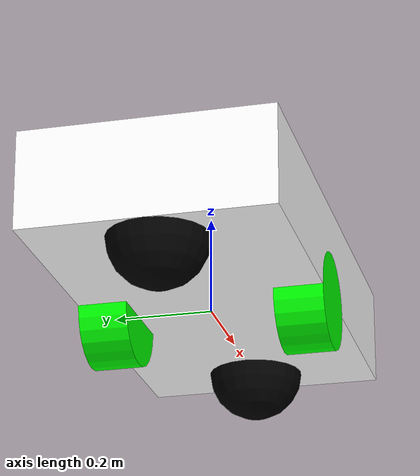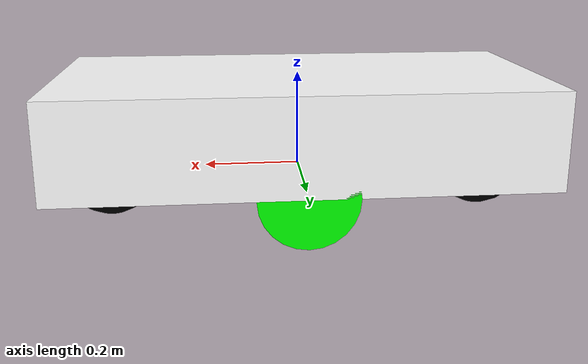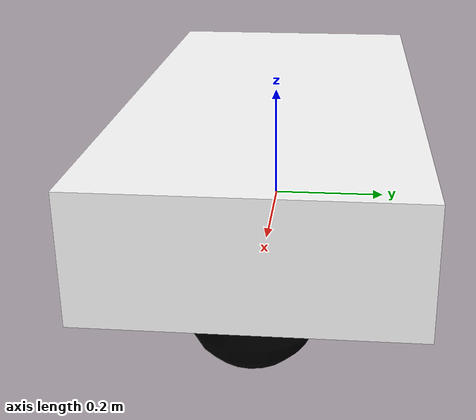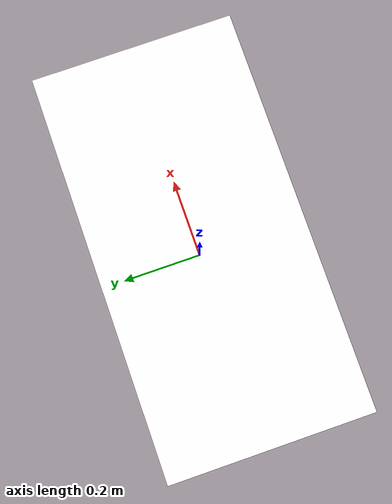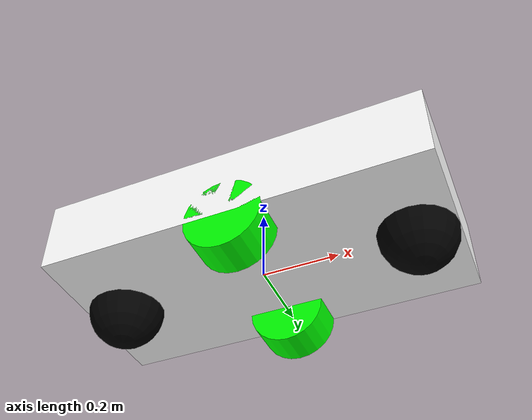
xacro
<?xml version="1.0"?>
<robot xmlns:xacro="http://www.ros.org/wiki/xacro">

    <xacro:include filename="inertial_macros.xacro"/>

    <material name= "white">
        <color rgba="1 1 1 1"/>
    </material>
    <material name= "black">
        <color rgba="0 0 0 1"/>
    </material>
    <material name= "orange">
        <color rgba="1 0.3 0.1 1"/>
    </material>
    <material name= "green">
        <color rgba="0 1 0 1"/>
    </material>
    <material name= "red">
        <color rgba="1 0 0 1"/>
    </material>

    <!-- BASE LINK -->
    <link name = "base_link">

    </link>

    <!-- CHASSIS LINK -->

    <joint name="chassis_joint" type="fixed">
        <parent link="base_link"/>
        <child link="chassis"/>
        <origin xyz="-0.5 0 0"/>
    </joint>

    <link name="chassis">
        <visual>
            <origin xyz="0.5 0 0.1" />
            <geometry>
                <box size="1 0.5 0.2"/>
            </geometry>
            <material name="white"/>
        </visual>

        <collision>
            <origin xyz="0.5 0 0.1" />
            <geometry>
                <box size="1 0.5 0.2"/>
            </geometry>
        </collision>
        <xacro:inertial_box mass="50" x="1" y="0.5" z="0.2">
            <origin xyz="0.5 0 0.1" rpy="0 0 0"/>
        </xacro:inertial_box>
    </link>

    <gazebo reference="chassis">r
        <material>Gazebo/White</material>
    </gazebo>
    <!--LEFT WHEEL LINK-->

    <joint name="left_wheel_joint" type="continuous">
        <parent link="base_link"/>
        <child link="left_wheel"/>
        <origin xyz="0 0.2 0" rpy="-${pi/2} 0 0"/>
        <axis xyz="0 0 1"/>
    </joint>

    <link name="left_wheel">
        <visual>
            <geometry>
                <cylinder length="0.1" radius="0.1"/>
            </geometry>
            <material name="green"/>
        </visual>

        <collision>
            <geometry>
                <cylinder length="0.1" radius="0.1"/>
            </geometry>
        </collision>
        <xacro:inertial_cylinder mass="5" length="0.1" radius="0.1">
            <origin xyz="0 0 0" rpy="0 0 0"/>
        </xacro:inertial_cylinder>
    </link>

    <gazebo reference="left_wheel">
        <material>Gazebo/Green</material>
    </gazebo>

    <!--RIGHT WHEEL LINK-->

    <joint name="right_wheel_joint" type="continuous">
        <parent link="base_link"/>
        <child link="right_wheel"/>
        <origin xyz="0 -0.2 0" rpy="${pi/2} 0 0"/>
        <axis xyz="0 0 -1"/>
    </joint>

    <link name="right_wheel">
        <visual>
            <geometry>
                <cylinder length="0.1" radius="0.1"/>
            </geometry>
            <material name="green"/>
        </visual>

        <collision>
            <geometry>
                <cylinder length="0.1" radius="0.1"/>
            </geometry>
        </collision>
        <xacro:inertial_cylinder mass="5" length="0.1" radius="0.1">
            <origin xyz="0 0 0" rpy="0 0 0"/>
        </xacro:inertial_cylinder>
    </link>

    <gazebo reference="right_wheel">
        <material>Gazebo/Green</material>
    </gazebo>

    <!-- FRONT CASTER WHEEL LINK-->

    <joint name="front_caster_wheel_joint" type="fixed">
        <parent link="chassis"/>
        <child link="front_caster_wheel"/>
        <origin xyz="0.9 0 0"/>
    </joint>

    <link name="front_caster_wheel">
        <visual>
            <geometry>
                <sphere radius="0.1"/>
            </geometry>
            <material name="black"/>
        </visual>

        <collision>
            <geometry>
                <sphere radius="0.1"/>
            </geometry>
        </collision>
        <xacro:inertial_sphere mass="2" radius="0.1">
            <origin xyz="0 0 0" rpy="0 0 0"/>
        </xacro:inertial_sphere>
    </link>

    <gazebo reference="front_caster_wheel">
        <material>Gazebo/Black</material>
        <mu1>0.001</mu1>
        <mu2>0.001</mu2>
    </gazebo>

    <!-- BACK CASTER WHEEL LINK-->

    <joint name="back_caster_wheel_joint" type="fixed">
        <parent link="chassis"/>
        <child link="back_caster_wheel"/>
        <origin xyz="0.1 0 0"/>
    </joint>

    <link name="back_caster_wheel">
        <visual>
            <geometry>
                <sphere radius="0.1"/>
            </geometry>
            <material name="black"/>
        </visual>

        <collision>
            <geometry>
                <sphere radius="0.1"/>
            </geometry>
        </collision>
    </link>

    <gazebo reference="back_caster_wheel">
        <material>Gazebo/Black</material>
    </gazebo>

</robot>
